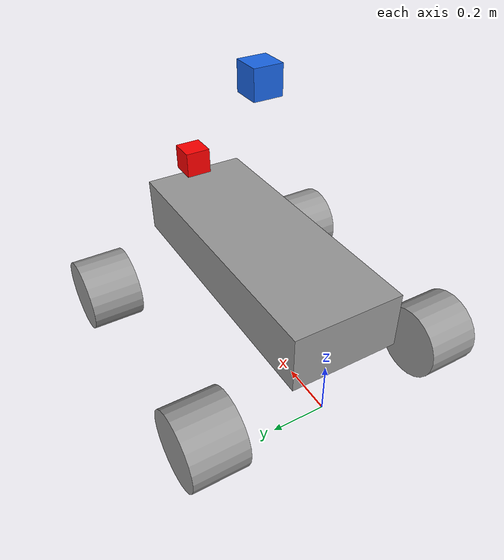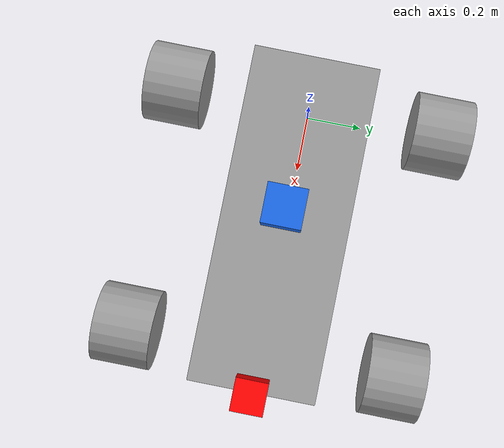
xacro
<?xml version="1.0"?>
<robot xmlns:xacro="http://www.ros.org/wiki/xacro" name="rover">

    <xacro:property name="wheel_radius" value="0.14"/>
    <xacro:property name="wheel_width" value="0.2"/>
    <xacro:property name="body_length" value="1.06"/>
    <xacro:property name="body_width" value="0.4"/>
    <xacro:property name="body_height" value="0.210"/>
    <xacro:property name="front_camera_length" value="0.1"/>
    <xacro:property name="front_camera_width" value="0.1"/>
    <xacro:property name="front_camera_height" value="0.1"/>
    <xacro:property name="middle_camera_length" value="0.1"/>
    <xacro:property name="middle_camera_width" value="0.1"/>
    <xacro:property name="middle_camera_height" value="0.1"/>
    <xacro:property name="swingarm_length" value="0.0"/>
    <xacro:property name="swingarm_width" value="0.0"/>
    <xacro:property name="swingarm_height" value="0.0"/>
    <xacro:property name="offset_to_rear_wheels_line" value="0.095810"/>
    <xacro:property name="offset_body_above_bottom_of_wheels" value="0.296152"/>
    <xacro:property name="wheel_spacing_from_middle" value="0.469475"/>
    <xacro:property name="distance_between_wheel_axis" value="0.8683"/>
    <xacro:property name="middle_camera_height_above_rover" value="0.5"/>

    <xacro:include filename="$(find rover_description)/urdf/rover_include.urdf.xacro"/>
    <xacro:include filename="$(find rover_description)/urdf/rover_materials.urdf.xacro"/>

    <link name="base_link">
    </link>

    <link name="body_link">
        <visual>
            <geometry>
                <box size="${body_length} ${body_width} ${body_height}"/>
            </geometry>
            <origin xyz="0 0 ${body_height/2}" rpy="0 0 0"/>
            <material name="gray"/>
        </visual>
        <collision>
            <geometry>
                <box size="${body_length} ${body_width} ${body_height}"/>
            </geometry>
            <origin xyz="0 0 ${body_height/2}" rpy="0 0 0"/>
        </collision>
    </link>

    <joint name="body_joint" type="fixed">
        <parent link="base_link"/>
        <child link="body_link"/>
        <origin xyz="${body_length/2 - offset_to_rear_wheels_line} 0 ${offset_body_above_bottom_of_wheels}" rpy="0 0 0"/>
    </joint>

    <xacro:wheel
    name="wheel_back_left"
    parent="base_link"
    xyz="0 ${wheel_spacing_from_middle} ${wheel_radius}"
    rpy="0 0 ${pi/2}"
    radius="${wheel_radius}"
    width="${wheel_width}"
    />

    <xacro:wheel
    name="wheel_back_right"
    parent="base_link"
    xyz="0 ${-wheel_spacing_from_middle} ${wheel_radius}"
    rpy="0 0 ${pi/2}"
    radius="${wheel_radius}"
    width="${wheel_width}"
    />

    <xacro:wheel
    name="wheel_front_left"
    parent="base_link"
    xyz="${distance_between_wheel_axis} ${wheel_spacing_from_middle} ${wheel_radius}"
    rpy="0 0 ${pi/2}"
    radius="${wheel_radius}"
    width="${wheel_width}"
    />

    <xacro:wheel
    name="wheel_front_right"
    parent="base_link"
    xyz="${distance_between_wheel_axis} ${-wheel_spacing_from_middle} ${wheel_radius}"
    rpy="0 0 ${pi/2}"
    radius="${wheel_radius}"
    width="${wheel_width}"
    />

    <link name="front_camera_link">
        <visual>
            <geometry>
                <box size="${front_camera_length} ${front_camera_width} ${front_camera_height}"/>
            </geometry>
            <origin xyz="0 0 0" rpy="0 0 0"/>
            <material name="red"/>
        </visual>
    </link>

    <joint name="front_camera_joint" type="fixed">
        <parent link="body_link"/>
        <child link="front_camera_link"/>
        <origin xyz="${body_length/2} 0 ${body_height + front_camera_height/2}" rpy="0 0 0"/>
    </joint>

    <link name="middle_camera_link">
        <visual>
            <geometry>
                <box size="${middle_camera_length} ${middle_camera_width} ${middle_camera_height}"/>
            </geometry>
            <origin xyz="0 0 0" rpy="0 0 0"/>
            <material name="blue"/>
        </visual>
    </link>

    <joint name="middle_camera_joint" type="fixed">
        <parent link="body_link"/>
        <child link="middle_camera_link"/>
        <origin xyz="0 0 ${middle_camera_height_above_rover+body_height + front_camera_height/2}" rpy="0 0 0"/>
    </joint>

</robot>

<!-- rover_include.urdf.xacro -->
<robot xmlns:xacro="http://www.ros.org/wiki/xacro">
    <xacro:macro name="wheel" params="name parent xyz rpy radius width">
        <joint name="${name}_joint" type="continuous">
            <parent link="${parent}"/>
            <child link="${name}_link"/>
            <origin xyz="${xyz}" rpy="${rpy}"/>
            <axis xyz="1 0 0"/>
        </joint>
]
        <link name="${name}_link">
            <visual>
                <origin xyz="0 0 0" rpy="0 ${pi/2} 0"/>
                <geometry>
                    <cylinder radius="${radius}" length="${width}"/>
                </geometry>
                <material name="gray"/>
            </visual>
            <collision>
            <origin xyz="0 0 0" rpy="0 ${pi/2} 0"/>
                <geometry>
                    <cylinder radius="${radius}" length="${width}"/>
                </geometry>
            </collision>
            <inertial>
                <mass value="0.5"/>
                <inertia ixx="0.001" iyy="0.001" izz="0.001"
                        ixy="0" ixz="0" iyz="0"/>
            </inertial>
        </link>
    </xacro:macro>

</robot>

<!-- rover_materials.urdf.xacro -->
<robot name="materials">
    <material name="black">
        <color rgba="0.02 0.02 0.02 1"/>
    </material>
    <material name="gray">
        <color rgba="0.6 0.6 0.6 1"/>
    </material>
    <material name="blue">
        <color rgba="0.1 0.4 0.9 1"/>
    </material>
    <material name="red">
        <color rgba="1.0 0.0 0.0 1.0"/>
    </material>
</robot>
